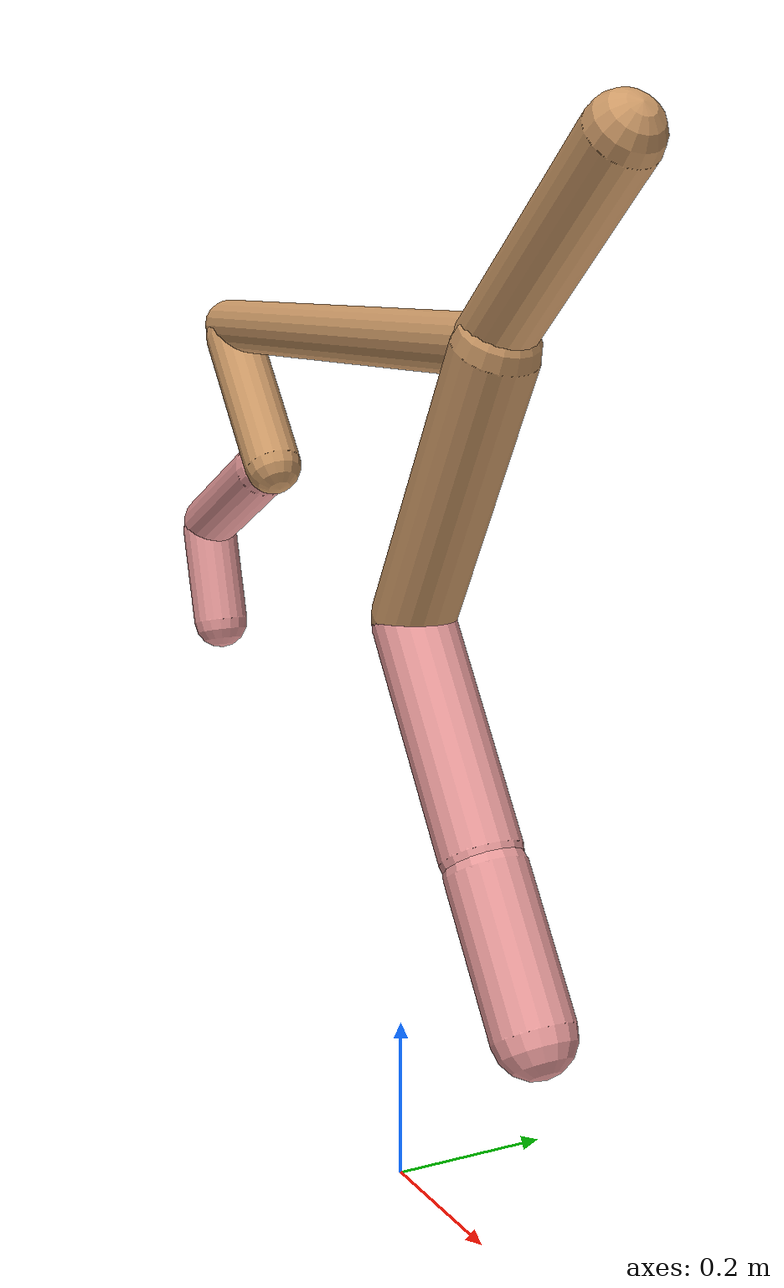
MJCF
<mujoco model="cheetah">
  <compiler angle="radian" coordinate="local" inertiafromgeom="true" settotalmass="14" />
  <default>
    <joint armature=".1" damping=".01" limited="true" solimplimit="0 .8 .03" solreflimit=".02 1" stiffness="8" />
    <geom conaffinity="0" condim="3" contype="1" friction="0.8 .1 .1" rgba="0.8 0.6 .4 1" solimp="0.0 0.8 0.01" solref="0.02 1" />
    <motor ctrllimited="true" ctrlrange="-1 1" />
  </default>
  <size nstack="300000" nuser_geom="1" />
  <option gravity="0 0 -9.81" timestep="0.01" />
  <worldbody>
    <body name="torso" pos="0.0 0.0 1.0203971480028793">
      <joint armature="0" axis="1 0 0" damping="0" limited="false" name="ignorex" pos="0 0 0" stiffness="0" type="slide" />
      <joint armature="0" axis="0 0 1" damping="0" limited="false" name="ignorez" pos="0 0 0" stiffness="0" type="slide" />
      <joint armature="0" axis="0 1 0" damping="0" limited="false" name="ignorey" pos="0 0 0" stiffness="0" type="hinge" />
      <geom fromto="-0.5 0.0 0.0 0.2060748161826706 0.0 0.0" name="torso" size="0.03380001926185924" type="capsule" />
      <geom axisangle="0 1 0 .87" name="head" pos="0.30607481618267063 0.0 0.1" size="0.041666723118563564 0.15" type="capsule" />

      <body name="bthigh" pos="-.5 0 0">
        <joint axis="0 1 0" damping="6" name="bthigh" pos="0 0 0" range="-.52 1.05" stiffness="240" type="hinge" />
        <geom axisangle="0 1 0 -3.8" name="bthigh" pos="0.0734775819030384 0.0 -0.0955208564739499" size="0.0373116533101923 0.10149999999999999" type="capsule" />
        <body name="bshin" pos="0.10695516380607678 0.0 -0.18104171294789978">
          <joint axis="0 1 0" damping="4.5" name="bshin" pos="0 0 0" range="-.785 .785" stiffness="180" type="hinge" />
          <geom axisangle="0 1 0 -2.03" name="bshin" pos="-0.0997507764050038 0.0 -0.0498753882025019" rgba="0.9 0.6 0.6 1" size="0.0373116533101923 0.105" type="capsule" />
          <body name="bfoot" pos="-0.1995015528100076 0.0 -0.0997507764050038">
            <joint axis="0 1 0" damping="3" name="bfoot" pos="0 0 0" range="-.4 .785" stiffness="120" type="hinge" />
            <geom axisangle="0 1 0 -.27" name="bfoot" pos="0.021667753813597694 0.0 -0.07005907066396588" rgba="0.9 0.6 0.6 1" size="0.0373116533101923 0.0658" type="capsule" />
            <inertial mass="10" />
          </body>
        </body>
      </body>
      <body name="fthigh" pos="0.20607481618267065 0.0 0.0">
        <joint axis="0 1 0" damping="4.5" name="fthigh" pos="0 0 0" range="-1.5 0.8" stiffness="180" type="hinge" />
        <geom axisangle="0 1 0 .52" name="fthigh" pos="-0.09245958750911511 0.0 -0.15850215001562587" size="0.04895438423090241 0.1775740802137897" type="capsule" />
        <body name="fshin" pos="-0.18491917501823021 0.0 -0.31700430003125174">
          <joint axis="0 1 0" damping="3" name="fshin" pos="0 0 0" range="-1.2 1.1" stiffness="120" type="hinge" />
          <geom axisangle="0 1 0 -.6" name="fshin" pos="0.08579967299711509 0.0 -0.11879954722677473" rgba="0.9 0.6 0.6 1" size="0.04895438423090241 0.14152520678693015" type="capsule" />
          <body name="ffoot" pos="0.17159934599423018 0.0 -0.23759909445354946">
            <joint axis="0 1 0" damping="1.5" name="ffoot" pos="0 0 0" range="-3.1 -0.3" stiffness="60" type="hinge" />
            <geom axisangle="0 1 0 -.6" name="ffoot" pos="0.057686195921801894 0.0 -0.08973408254502518" rgba="0.9 0.6 0.6 1" size="0.04895438423090241 0.09346004221778406" type="capsule" />
            <inertial mass="10" />
          </body>
        </body>
      </body>
    </body>
  </worldbody>
  <actuator>
    <motor gear="120" joint="bthigh" name="bthigh" />
    <motor gear="90" joint="bshin" name="bshin" />
    <motor gear="60" joint="bfoot" name="bfoot" />
    <motor gear="120" joint="fthigh" name="fthigh" />
    <motor gear="60" joint="fshin" name="fshin" />
    <motor gear="30" joint="ffoot" name="ffoot" />
  </actuator>
</mujoco>
